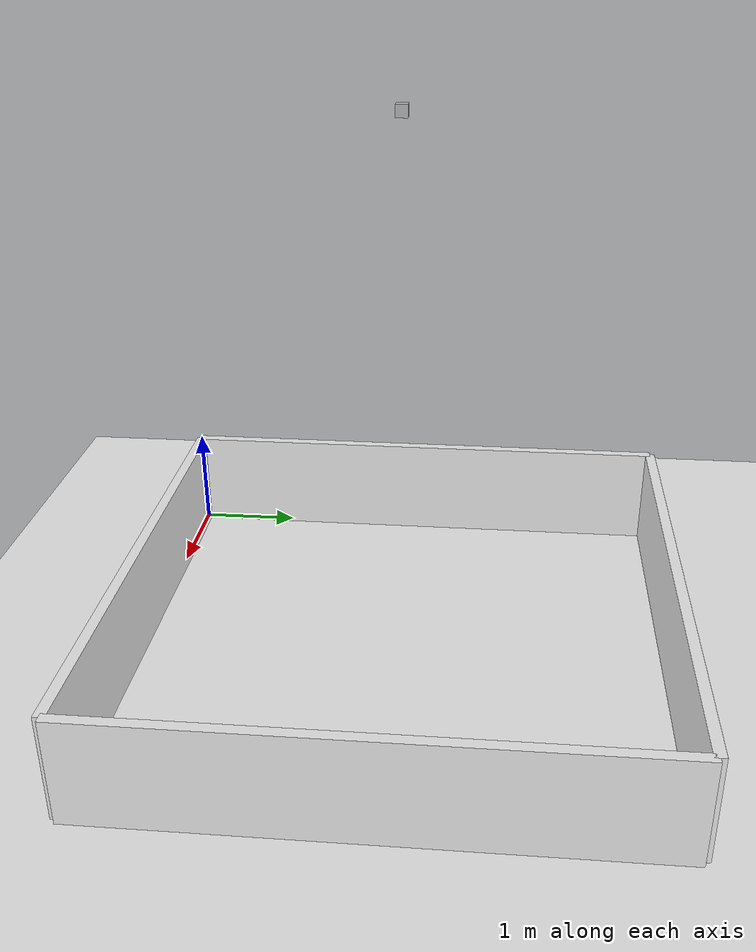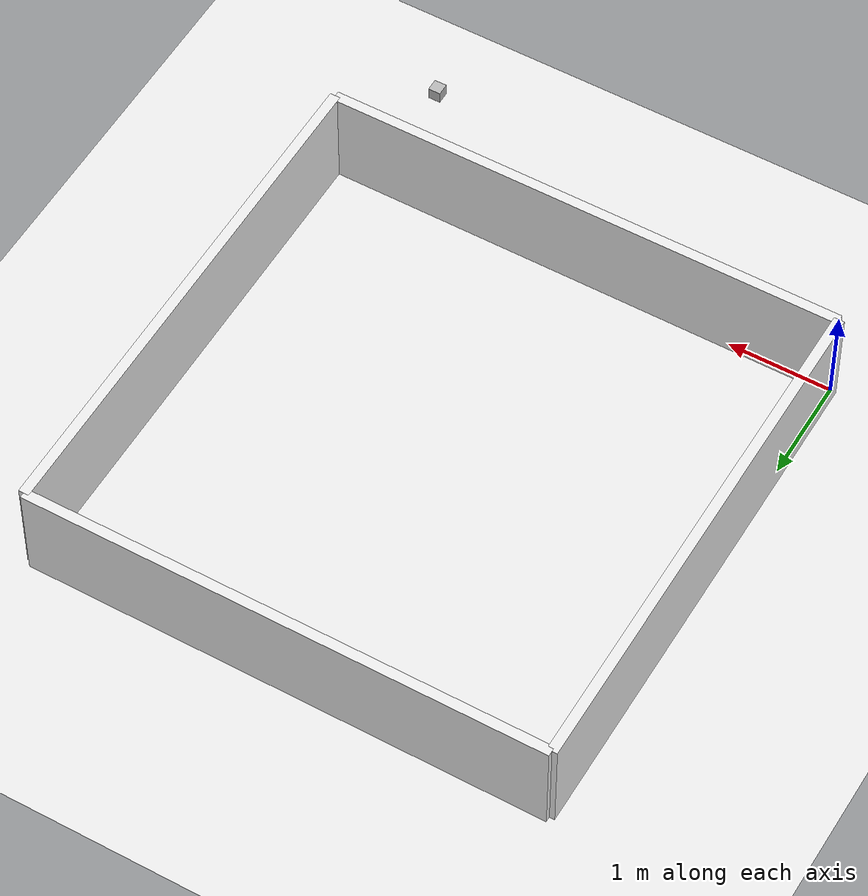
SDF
<sdf version="1.6">
 <world name="default">
  <light name="sun" type="directional">
   <pose>0 0 10 0 -0 0</pose>
   <diffuse>0.8 0.8 0.8 1</diffuse>
   <specular>0.2 0.2 0.2 1</specular>
   <attenuation>
    <range>1000</range>
    <constant>0.9</constant>
    <linear>0.01</linear>
    <quadratic>0.001</quadratic>
   </attenuation>
   <direction>-0.5 0.1 -0.9</direction>
  </light>
  <model name="ground_plane">
   <static>1</static>
   <link name="link">
    <collision name="collision">
     <geometry><plane><normal>0 0 1</normal><size>100 100</size></plane></geometry>
     <surface>
      <contact><collide_bitmask>65535</collide_bitmask></contact>
      <friction><ode><mu>100</mu><mu2>50</mu2></ode></friction>
     </surface>
    </collision>
    <visual name="visual">
     <cast_shadows>0</cast_shadows>
     <geometry><plane><normal>0 0 1</normal><size>100 100</size></plane></geometry>
     <material>
      <script><uri>file://media/materials/scripts/gazebo.material</uri><name>Gazebo/White</name></script>
     </material>
    </visual>
   </link>
  </model>
  <gravity>0 0 -9.8</gravity>
  <magnetic_field>6e-06 2.3e-05 -4.2e-05</magnetic_field>
  <atmosphere type="adiabatic"/>
  <physics name="default_physics" default="0" type="ode">
   <max_step_size>0.001</max_step_size>
   <real_time_factor>1</real_time_factor>
   <real_time_update_rate>1000</real_time_update_rate>
  </physics>
  <scene><ambient>0.4 0.4 0.4 1</ambient><background>0.7 0.7 0.7 1</background><shadows>1</shadows></scene>
  <spherical_coordinates>
   <surface_model>EARTH_WGS84</surface_model>
   <latitude_deg>0</latitude_deg>
   <longitude_deg>0</longitude_deg>
   <elevation>0</elevation>
   <heading_deg>0</heading_deg>
  </spherical_coordinates>
  <model name="wall_0">
   <static>1</static>
   <pose>2.5 0.0 0.5 0 0 0</pose>
   <link name="link">
    <inertial>
     <mass>1</mass>
     <inertia>
      <ixx>0.166667</ixx>
      <ixy>0</ixy>
      <ixz>0</ixz>
      <iyy>0.166667</iyy>
      <iyz>0</iyz>
      <izz>0.166667</izz>
     </inertia>
    </inertial>
    <collision name="collision"><geometry><box><size>5 0.1 1</size></box></geometry></collision>
    <visual name="visual">
     <geometry><box><size>5 0.1 1</size></box></geometry>
     <material>
      <script><name>Gazebo/White</name><uri>file://media/materials/scripts/gazebo.material</uri></script>
     </material>
    </visual>
   </link>
  </model>
  <model name="wall_1">
   <static>1</static>
   <pose>5.0 2.5 0.5 0 0 0</pose>
   <link name="link">
    <inertial>
     <mass>1</mass>
     <inertia>
      <ixx>0.166667</ixx>
      <ixy>0</ixy>
      <ixz>0</ixz>
      <iyy>0.166667</iyy>
      <iyz>0</iyz>
      <izz>0.166667</izz>
     </inertia>
    </inertial>
    <collision name="collision"><geometry><box><size>0.1 5 1</size></box></geometry></collision>
    <visual name="visual">
     <geometry><box><size>0.1 5 1</size></box></geometry>
     <material>
      <script><name>Gazebo/White</name><uri>file://media/materials/scripts/gazebo.material</uri></script>
     </material>
    </visual>
   </link>
  </model>
  <model name="wall_2">
   <static>1</static>
   <pose>2.5 5.0 0.5 0.0 0 0</pose>
   <link name="link">
    <inertial>
     <mass>1</mass>
     <inertia>
      <ixx>0.166667</ixx>
      <ixy>0</ixy>
      <ixz>0</ixz>
      <iyy>0.166667</iyy>
      <iyz>0</iyz>
      <izz>0.166667</izz>
     </inertia>
    </inertial>
    <collision name="collision"><geometry><box><size>5.0 0.1 1</size></box></geometry></collision>
    <visual name="visual">
     <geometry><box><size>5.0 0.1 1</size></box></geometry>
     <material>
      <script><name>Gazebo/White</name><uri>file://media/materials/scripts/gazebo.material</uri></script>
     </material>
    </visual>
   </link>
  </model>
  <model name="wall_3">
   <static>1</static>
   <pose>0 2.5 0.5 0 0 0</pose>
   <link name="link">
    <inertial>
     <mass>1</mass>
     <inertia>
      <ixx>0.166667</ixx>
      <ixy>0</ixy>
      <ixz>0</ixz>
      <iyy>0.166667</iyy>
      <iyz>0</iyz>
      <izz>0.166667</izz>
     </inertia>
    </inertial>
    <collision name="collision"><geometry><box><size>0.1 5 1</size></box></geometry></collision>
    <visual name="visual">
     <geometry><box><size>0.1 5 1</size></box></geometry>
     <material>
      <script><name>Gazebo/White</name><uri>file://media/materials/scripts/gazebo.material</uri></script>
     </material>
    </visual>
   </link>
  </model>
  <model name="camera">
   <static>1</static>
   <pose>2.5 2.5 5 0 1.5707 1.5707</pose>
   <link name="Top">
    <inertial>
     <mass>0.1</mass>
     <inertia>
      <ixx>0.000166667</ixx>
      <iyy>0.000166667</iyy>
      <izz>0.000166667</izz>
      <ixy>0</ixy>
      <ixz>0</ixz>
      <iyz>0</iyz>
     </inertia>
    </inertial>
    <collision name="collision"><geometry><box><size>0.1 0.1 0.1</size></box></geometry></collision>
    <visual name="visual"><geometry><box><size>0.1 0.1 0.1</size></box></geometry></visual>
    <sensor name="camera" type="camera">
     <camera name="__default__">
      <horizontal_fov>1.047</horizontal_fov>
      <image><width>320</width><height>240</height></image>
      <clip><near>0.1</near><far>100</far></clip>
     </camera>
     <plugin name="camera_controller" filename="libgazebo_ros_camera.so">
      <alwaysOn>true</alwaysOn>
      <updateRate>30.0</updateRate>
      <cameraName>Top/camera1</cameraName>
      <imageTopicName>image_raw</imageTopicName>
      <cameraInfoTopicName>camera_info</cameraInfoTopicName>
      <frameName>camera_link</frameName>
      <hackBaseline>0.07</hackBaseline>
      <distortionK1>0.0</distortionK1>
      <distortionK2>0.0</distortionK2>
      <distortionK3>0.0</distortionK3>
      <distortionT1>0.0</distortionT1>
      <distortionT2>0.0</distortionT2>
     </plugin>
    </sensor>
   </link>
  </model>
 </world>
</sdf>
